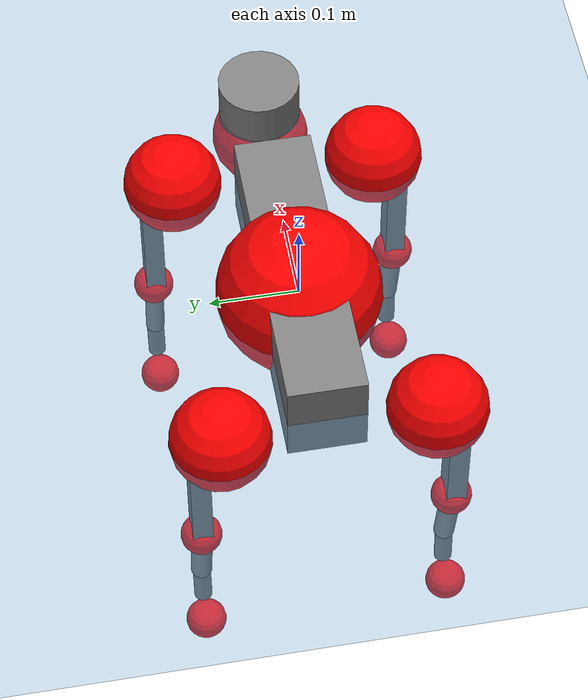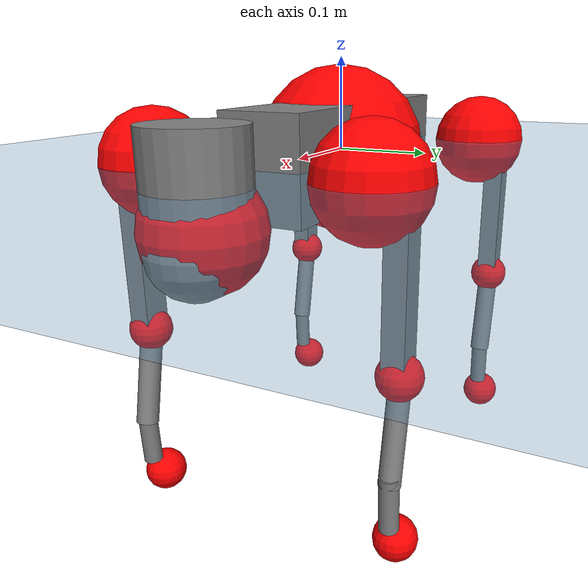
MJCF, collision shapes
<mujoco model="go2">
  <compiler angle="radian" assetdir="assets" balanceinertia="true" inertiafromgeom="false"/>

  <option timestep="0.005" density="1.2" viscosity="2e-05"/>

  <size nkey="1"/>

  <visual>
    <quality shadowsize="8192"/>
    <map shadowclip="0.5"/>
  </visual>

  <default>
    <default class="/">
      <geom contype="0" conaffinity="0" group="1" solref="-1000 -80"/>
      <site size="0.01 0.005 0.005" group="5"/>
      <general forcelimited="true" biastype="affine" gainprm="20" biasprm="0 -20 -0.5"/>
      <default class="go2">
        <joint armature="0.01" damping="0.01" frictionloss="0.2"/>
        <geom condim="1" margin="0.001"/>
        <default class="visual">
          <geom type="mesh" group="2"/>
        </default>
        <default class="collision">
          <geom group="3"/>
          <default class="foot">
            <geom size="0.022 0 0" condim="6" priority="1" friction="0.8 0.02 0.01" solimp="0.015 1 0.022"/>
          </default>
        </default>
        <default class="reward_collision_sphere">
          <geom group="5" rgba="1 0 0 1"/>
        </default>
      </default>
    </default>
  </default>

  <asset>
    <texture type="skybox" colorspace="auto" name="//unnamed_texture_0" builtin="gradient" rgb1="0.95 0.95 0.95" rgb2="0.95 0.95 0.95" width="100" height="600"/>
    <texture type="2d" colorspace="auto" name="texplane" builtin="checker" rgb1="0.345 0.575 0.748" rgb2="0.345 0.575 0.748" markrgb="1 1 1" width="512" height="512"/>
    <material name="MatPlane" class="/" texture="texplane" texuniform="true" texrepeat="2 2" specular="0.9"/>
    <material name="metal" class="/" rgba="0.9 0.95 0.95 1"/>
    <material name="black" class="/" rgba="0 0 0 1"/>
    <material name="white" class="/"/>
    <material name="gray" class="/" rgba="0.671705 0.692426 0.77427 1"/>
    <mesh name="base_0" class="/" file="base_0.obj"/>
    <mesh name="base_1" class="/" file="base_1.obj"/>
    <mesh name="base_2" class="/" file="base_2.obj"/>
    <mesh name="base_3" class="/" file="base_3.obj"/>
    <mesh name="base_4" class="/" file="base_4.obj"/>
    <mesh name="hip_0" class="/" file="hip_0.obj"/>
    <mesh name="hip_1" class="/" file="hip_1.obj"/>
    <mesh name="thigh_0" class="/" file="thigh_0.obj"/>
    <mesh name="thigh_1" class="/" file="thigh_1.obj"/>
    <mesh name="thigh_mirror_0" class="/" file="thigh_mirror_0.obj"/>
    <mesh name="thigh_mirror_1" class="/" file="thigh_mirror_1.obj"/>
    <mesh name="calf_0" class="/" file="calf_0.obj"/>
    <mesh name="calf_1" class="/" file="calf_1.obj"/>
    <mesh name="calf_mirror_0" class="/" file="calf_mirror_0.obj"/>
    <mesh name="calf_mirror_1" class="/" file="calf_mirror_1.obj"/>
    <mesh name="foot" class="/" file="foot.obj"/>
  </asset>

  <worldbody>
    <geom name="floor" class="/" size="100 100 0.125" type="plane" group="0" material="MatPlane"/>
    <light name="toplight_shadow" class="/" pos="0 0 5" dir="0.0990148 0.0990148 -0.990148" type="directional" ambient="0.04 0.04 0.04" diffuse="0.55 0.55 0.55" specular="0.12 0.12 0.12"/>
    <light name="toplight_fill" class="/" pos="0 0 5" dir="0.0990148 0.0990148 -0.990148" type="directional" castshadow="false" ambient="0.04 0.04 0.04" diffuse="0.3 0.3 0.3" specular="0.08 0.08 0.08"/>
    <body name="trunk" childclass="go2" pos="0.000857336 -0.000229995 -0.000174014" quat="1 -0.000201845 -3.82375e-05 -0.000248657">
      <inertial pos="0.0171548 -0.00295654 -0.00493921" quat="-0.00560092 0.713395 -0.000925379 0.700739" mass="5.75072" diaginertia="0.0762878 0.100742 0.0105553"/>
      <joint name="//unnamed_joint_0" type="free" armature="0" damping="0" frictionloss="0"/>
      <geom name="//unnamed_geom_1" class="visual" material="black" mesh="base_0"/>
      <geom name="//unnamed_geom_2" class="visual" material="black" mesh="base_1"/>
      <geom name="//unnamed_geom_3" class="visual" material="black" mesh="base_2"/>
      <geom name="//unnamed_geom_4" class="visual" material="white" mesh="base_3"/>
      <geom name="//unnamed_geom_5" class="visual" material="gray" mesh="base_4"/>
      <geom name="trunk_1" class="collision" size="0.174876 0.0434632 0.0529926" type="box"/>
      <geom name="trunk_2" class="collision" size="0.0464848 0.0418363" pos="0.266523 0 0.00847512" type="cylinder"/>
      <geom name="trunk_3" class="collision" size="0.0436957" pos="0.274005 0 -0.0508507"/>
      <geom name="//unnamed_geom_9" class="reward_collision_sphere" size="0.0929695"/>
      <geom name="//unnamed_geom_10" class="reward_collision_sphere" size="0.0557817" pos="0.261848 0 -0.038138"/>
      <site name="imu" pos="-0.0102416 0.000723291 0.0221748" size="0.00929695"/>
      <camera name="track" pos="0 -2.01281 0" quat="0.707107 0.707107 0 0" mode="trackcom"/>
      <camera name="ego_camera" pos="0.291773 0 0.038138" quat="-0.5 -0.5 0.5 0.5"/>
      <body name="FL_hip" pos="0.177548 0.0441249 -0.0017684" quat="1 0.000399805 -0.000190019 0.000170741">
        <inertial pos="-0.00508282 -0.000177853 -0.00042806" quat="0.497446 0.498529 0.506053 0.497923" mass="0.536174" diaginertia="0.000616022 0.00057719 0.000203575"/>
        <joint name="FL_hip_joint" pos="0 0 0" axis="0.999973 0.006716 0.00293376" range="-1.04605 1.05596" armature="0.00953703" damping="0.0125359" frictionloss="0.166537"/>
        <geom name="//unnamed_geom_11" class="visual" material="metal" mesh="hip_0"/>
        <geom name="//unnamed_geom_12" class="visual" material="gray" mesh="hip_1"/>
        <geom name="//unnamed_geom_13" class="collision" size="0.042766 0.0185939" pos="0 0.0805123 0" quat="0.707107 0.707107 0 0" type="cylinder"/>
        <geom name="//unnamed_geom_14" class="reward_collision_sphere" size="0.0557817" pos="0 0.0704483 0"/>
        <body name="FL_thigh" pos="-0.00240855 0.0981137 0.00240373" quat="0.999999 0.000111267 -0.000612791 -0.00118191">
          <inertial pos="-0.00350119 -0.0220864 -0.02626" quat="0.831264 0.0759979 -0.0109751 0.550549" mass="0.902483" diaginertia="0.00425849 0.00585838 0.000382878"/>
          <joint name="FL_thigh_joint" pos="0 0 0" axis="-0.001606 0.999998 0.00109585" stiffness="0.00838229" range="-1.51331 3.53297" armature="0.00972489" damping="0.0162039" frictionloss="0.171757"/>
          <geom name="//unnamed_geom_15" class="visual" material="metal" mesh="thigh_0"/>
          <geom name="//unnamed_geom_16" class="visual" material="gray" mesh="thigh_1"/>
          <geom name="//unnamed_geom_17" class="collision" size="0.0990125 0.0113888 0.0158048" pos="0 0 -0.09026" quat="0.707107 0 0.707107 0" type="box"/>
          <body name="FL_calf" pos="0.000110315 0.00182114 -0.179953" quat="1 9.52784e-06 -0.00045346 -0.000142979">
            <inertial pos="0.00585403 -0.00157374 -0.120527" quat="0.709089 0.00122048 -0.00505858 0.7051" mass="0.196102" diaginertia="0.00104351 0.00152307 2.32318e-05"/>
            <joint name="FL_calf_joint" pos="0 0 0" axis="-0.0140189 0.999887 -0.00540764" range="-2.68348 -0.831501" armature="0.00916545" damping="0.00221824" frictionloss="0.189196"/>
            <geom name="//unnamed_geom_18" class="visual" material="gray" mesh="calf_0"/>
            <geom name="//unnamed_geom_19" class="visual" material="black" mesh="calf_1"/>
            <geom name="FL_calf0" class="collision" size="0.0111563 0.0557817" pos="0.00748136 0 -0.0508507" quat="0.994493 0 -0.104807 0" type="cylinder"/>
            <geom name="//unnamed_geom_21" class="collision" size="0.0102266 0.0302151" pos="0.0187034 0 -0.125432" quat="0.999688 0 0.0249974 0" type="cylinder"/>
            <geom name="//unnamed_geom_22" class="visual" pos="0 0 -0.18052" quat="1 0 0 0" material="black" mesh="foot"/>
            <geom name="FL_foot" class="foot" size="0.0160763" pos="-0.00187034 0 -0.18052"/>
            <geom name="//unnamed_geom_24" class="reward_collision_sphere" size="0.0232424"/>
            <geom name="//unnamed_geom_25" class="reward_collision_sphere" size="0.0232424" pos="-0.00187034 0 -0.18052"/>
            <site name="FL_foot" class="foot" pos="-0.00187034 0 -0.18052" size="0.00929695"/>
          </body>
        </body>
      </body>
      <body name="FR_hip" pos="0.178562 -0.0467304 8.21778e-05" quat="1 -0.000279893 5.13122e-05 -7.72519e-05">
        <inertial pos="-0.00665794 -0.00408835 -0.00249556" quat="0.490579 0.500771 0.507637 0.500863" mass="0.538443" diaginertia="0.000603773 0.000628242 0.000200748"/>
        <joint name="FR_hip_joint" pos="0 0 0" axis="0.999891 0.0083106 -0.0122027" stiffness="2.15471e-05" range="-1.0719 1.0516" armature="0.00937337" damping="0" frictionloss="0.186072"/>
        <geom name="//unnamed_geom_26" class="visual" pos="0 1.3842e-09 5.93713e-08" quat="4.63268e-05 1 0 0" material="metal" mesh="hip_0"/>
        <geom name="//unnamed_geom_27" class="visual" pos="0 2.24396e-09 -1.46848e-07" quat="4.63268e-05 1 0 0" material="gray" mesh="hip_1"/>
        <geom name="//unnamed_geom_28" class="collision" size="0.042766 0.0185939" pos="0 -0.0805123 0" quat="0.707107 0.707107 0 0" type="cylinder"/>
        <geom name="//unnamed_geom_29" class="reward_collision_sphere" size="0.0557817" pos="0 -0.0704483 0"/>
        <body name="FR_thigh" pos="0.00176356 -0.0980436 -0.00225449" quat="0.999999 0.00118864 -0.000180016 0.000496801">
          <inertial pos="-0.000858595 0.0230003 -0.0292171" quat="0.546818 -0.0243724 0.0808552 0.832982" mass="0.968452" diaginertia="0.00420997 0.00590609 0.000402701"/>
          <joint name="FR_thigh_joint" pos="0 0 0" axis="0.00433735 -0.99999 0.0013348" stiffness="0.000369871" range="-3.49572 1.59208" armature="0.008454" damping="0.0125687" frictionloss="0.190121"/>
          <geom name="//unnamed_geom_30" class="visual" material="metal" mesh="thigh_mirror_0"/>
          <geom name="//unnamed_geom_31" class="visual" material="gray" mesh="thigh_mirror_1"/>
          <geom name="//unnamed_geom_32" class="collision" size="0.0990125 0.0113888 0.0158048" pos="0 0 -0.09026" quat="0.707107 0 0.707107 0" type="box"/>
          <body name="FR_calf" pos="-0.00148708 -0.000211566 -0.180293" quat="1 0.000494443 -0.000283493 -0.00061568">
            <inertial pos="0.00331688 0.000750227 -0.119833" quat="0.70271 0.00630141 0.00878634 0.711394" mass="0.204263" diaginertia="0.00110502 0.00154566 2.38992e-05"/>
            <joint name="FR_calf_joint" pos="0 0 0" axis="-0.0059898 -0.999969 0.00501504" range="0.782999 2.68851" armature="0.010645" damping="0.0208101" frictionloss="0.192253"/>
            <geom name="//unnamed_geom_33" class="visual" material="gray" mesh="calf_mirror_0"/>
            <geom name="//unnamed_geom_34" class="visual" material="black" mesh="calf_mirror_1"/>
            <geom name="FR_calf0" class="collision" size="0.012086 0.0557817" pos="0.0093517 0 -0.0508507" quat="0.995004 0 -0.0998334 0" type="cylinder"/>
            <geom name="//unnamed_geom_36" class="collision" size="0.0102266 0.0302151" pos="0.0187034 0 -0.125432" quat="0.999688 0 0.0249974 0" type="cylinder"/>
            <geom name="//unnamed_geom_37" class="visual" pos="0 0 -0.18052" quat="1 0 0 0" material="black" mesh="foot"/>
            <geom name="FR_foot" class="foot" size="0.0204812" pos="-0.00187034 0 -0.18052"/>
            <geom name="//unnamed_geom_39" class="reward_collision_sphere" size="0.0232424"/>
            <geom name="//unnamed_geom_40" class="reward_collision_sphere" size="0.0232424" pos="-0.00187034 0 -0.18052"/>
            <site name="FR_foot" class="foot" pos="-0.00187034 0 -0.18052" size="0.00929695"/>
          </body>
        </body>
      </body>
      <body name="RL_hip" pos="-0.178004 0.045333 -0.00309746" quat="1 -1.39936e-05 -1.36217e-05 -1.36471e-06">
        <inertial pos="0.00477085 0.00446895 -0.00164459" quat="0.502911 0.492124 0.508021 0.496799" mass="0.564279" diaginertia="0.000672433 0.00064426 0.000213352"/>
        <joint name="RL_hip_joint" pos="0 0 0" axis="-0.999963 0.00567758 0.00645238" range="-1.05487 1.03933" armature="0.00966061" damping="0" frictionloss="0.187367"/>
        <geom name="//unnamed_geom_41" class="visual" pos="-7.63643e-10 0 -1.49691e-07" quat="4.63268e-05 0 1 0" material="metal" mesh="hip_0"/>
        <geom name="//unnamed_geom_42" class="visual" pos="-1.23796e-09 0 -1.32755e-07" quat="4.63268e-05 0 1 0" material="gray" mesh="hip_1"/>
        <geom name="//unnamed_geom_43" class="collision" size="0.042766 0.0185939" pos="0 0.0805123 0" quat="0.707107 0.707107 0 0" type="cylinder"/>
        <geom name="//unnamed_geom_44" class="reward_collision_sphere" size="0.0557817" pos="0 0.0704483 0"/>
        <body name="RL_thigh" pos="0.000378719 0.0960401 0.00081386" quat="1 -3.17881e-05 3.03676e-05 -2.95893e-06">
          <inertial pos="-0.00580046 -0.0223705 -0.030449" quat="0.829189 0.0852791 -0.0199017 0.552067" mass="0.895819" diaginertia="0.00400416 0.00602495 0.000373408"/>
          <joint name="RL_thigh_joint" pos="0 0 0" axis="-0.00945147 0.999955 0.000330572" stiffness="0.0145245" range="-0.543454 4.49583" armature="0.00881255" damping="0" frictionloss="0.184789"/>
          <geom name="//unnamed_geom_45" class="visual" material="metal" mesh="thigh_0"/>
          <geom name="//unnamed_geom_46" class="visual" material="gray" mesh="thigh_1"/>
          <geom name="//unnamed_geom_47" class="collision" size="0.0990125 0.0113888 0.0158048" pos="0 0 -0.09026" quat="0.707107 0 0.707107 0" type="box"/>
          <body name="RL_calf" pos="-0.000471347 0.000307066 -0.180422" quat="1 -8.12994e-05 0.000224829 0.000185657">
            <inertial pos="0.00691963 0.00223654 -0.119492" quat="0.706993 0.00746843 -0.00967931 0.707114" mass="0.199133" diaginertia="0.00106771 0.00160875 2.37627e-05"/>
            <joint name="RL_calf_joint" pos="0 0 0" axis="-0.00691877 0.999963 0.00509986" stiffness="0.00464193" range="-2.66742 -0.881932" armature="0.0105879" damping="0.017544" frictionloss="0.161118"/>
            <geom name="//unnamed_geom_48" class="visual" material="gray" mesh="calf_0"/>
            <geom name="//unnamed_geom_49" class="visual" material="black" mesh="calf_1"/>
            <geom name="RL_calf0" class="collision" size="0.012086 0.0557817" pos="0.0093517 0 -0.0508507" quat="0.995004 0 -0.0998334 0" type="cylinder"/>
            <geom name="//unnamed_geom_51" class="collision" size="0.0102266 0.0302151" pos="0.0187034 0 -0.125432" quat="0.999688 0 0.0249974 0" type="cylinder"/>
            <geom name="//unnamed_geom_52" class="visual" pos="0 0 -0.18052" quat="1 0 0 0" material="black" mesh="foot"/>
            <geom name="RL_foot" class="foot" size="0.0182939" pos="-0.00187034 0 -0.18052"/>
            <geom name="//unnamed_geom_54" class="reward_collision_sphere" size="0.0232424"/>
            <geom name="//unnamed_geom_55" class="reward_collision_sphere" size="0.0232424" pos="-0.00187034 0 -0.18052"/>
            <site name="RL_foot" class="foot" pos="-0.00187034 0 -0.18052" size="0.00929695"/>
          </body>
        </body>
      </body>
      <body name="RR_hip" pos="-0.178493 -0.0481861 0.000446297" quat="1 0.000152493 -6.47723e-05 -0.00052925">
        <inertial pos="0.00330704 -0.00053939 -0.00286947" quat="0.492644 0.49821 0.506897 0.50214" mass="0.545694" diaginertia="0.000611867 0.000598749 0.000203072"/>
        <joint name="RR_hip_joint" pos="0 0 0" axis="-0.999901 -0.0135039 0.00386965" stiffness="0.00125977" range="-1.10158 1.06897" armature="0.00914031" damping="0.000612423" frictionloss="0.185332"/>
        <geom name="//unnamed_geom_56" class="visual" pos="7.66108e-10 1.3842e-09 -2.09063e-07" quat="2.14617e-09 4.63268e-05 4.63268e-05 -1" material="metal" mesh="hip_0"/>
        <geom name="//unnamed_geom_57" class="visual" pos="1.23186e-09 2.24396e-09 1.40929e-08" quat="2.14617e-09 4.63268e-05 4.63268e-05 -1" material="gray" mesh="hip_1"/>
        <geom name="//unnamed_geom_58" class="collision" size="0.042766 0.0185939" pos="0 -0.0805123 0" quat="0.707107 0.707107 0 0" type="cylinder"/>
        <geom name="//unnamed_geom_59" class="reward_collision_sphere" size="0.0557817" pos="0 -0.0704483 0"/>
        <body name="RR_thigh" pos="0.00264727 -0.0956423 -0.00171685" quat="0.999999 -0.000990016 -0.000734449 0.000195988">
          <inertial pos="-0.00288643 0.0241115 -0.0287113" quat="0.552211 -0.0200356 0.084225 0.829197" mass="0.875907" diaginertia="0.00402517 0.00590381 0.000378961"/>
          <joint name="RR_thigh_joint" pos="0 0 0" axis="-0.000746604 -1 0.000664979" stiffness="0.00349991" range="-4.50481 0.536217" armature="0.00979433" damping="0.0169289" frictionloss="0.188461"/>
          <geom name="//unnamed_geom_60" class="visual" material="metal" mesh="thigh_mirror_0"/>
          <geom name="//unnamed_geom_61" class="visual" material="gray" mesh="thigh_mirror_1"/>
          <geom name="//unnamed_geom_62" class="collision" size="0.0990125 0.0113888 0.0158048" pos="0 0 -0.09026" quat="0.707107 0 0.707107 0" type="box"/>
          <body name="RR_calf" pos="0.000151862 0.00221416 -0.179992" quat="0.999999 -0.000863473 0.000689781 0.000695476">
            <inertial pos="0.00831821 -9.31689e-06 -0.120808" quat="0.707127 0.00142246 0.0114379 0.706993" mass="0.19734" diaginertia="0.00104575 0.00151262 2.28971e-05"/>
            <joint name="RR_calf_joint" pos="0 0 0" axis="-0.00282893 -0.999995 0.00116688" range="0.827107 2.78064" armature="0.00935661" damping="0.0205002" frictionloss="0.191423"/>
            <geom name="//unnamed_geom_63" class="visual" material="gray" mesh="calf_mirror_0"/>
            <geom name="//unnamed_geom_64" class="visual" material="black" mesh="calf_mirror_1"/>
            <geom name="RR_calf0" class="collision" size="0.012086 0.0557817" pos="0.0093517 0 -0.0508507" quat="0.995004 0 -0.0998334 0" type="cylinder"/>
            <geom name="//unnamed_geom_66" class="collision" size="0.0102266 0.0302151" pos="0.0187034 0 -0.125432" quat="0.999688 0 0.0249974 0" type="cylinder"/>
            <geom name="//unnamed_geom_67" class="visual" pos="0 0 -0.18052" quat="1 0 0 0" material="black" mesh="foot"/>
            <geom name="RR_foot" class="foot" size="0.0195865" pos="-0.00187034 0 -0.18052"/>
            <geom name="//unnamed_geom_69" class="reward_collision_sphere" size="0.0232424"/>
            <geom name="//unnamed_geom_70" class="reward_collision_sphere" size="0.0232424" pos="-0.00187034 0 -0.18052"/>
            <site name="RR_foot" class="foot" pos="-0.00187034 0 -0.18052" size="0.00929695"/>
          </body>
        </body>
      </body>
    </body>
  </worldbody>

  <contact>
    <pair class="/" geom1="floor" geom2="FL_foot" name="//unnamed_contact_0"/>
    <pair class="/" geom1="floor" geom2="FR_foot" name="//unnamed_contact_1"/>
    <pair class="/" geom1="floor" geom2="RL_foot" name="//unnamed_contact_2"/>
    <pair class="/" geom1="floor" geom2="RR_foot" name="//unnamed_contact_3"/>
  </contact>

  <actuator>
    <general name="FL_hip" class="/" joint="FL_hip_joint" forcerange="-19.8461 19.8461" gainprm="18.0145" biasprm="0 -18.0145 -0.447804"/>
    <general name="FL_thigh" class="/" joint="FL_thigh_joint" forcerange="-19.8376 19.8376" gainprm="18.0145" biasprm="0 -18.0145 -0.447804"/>
    <general name="FL_calf" class="/" joint="FL_calf_joint" forcerange="-42.3076 42.3076" gainprm="18.0145" biasprm="0 -18.0145 -0.447804"/>
    <general name="FR_hip" class="/" joint="FR_hip_joint" forcerange="-22.4341 22.4341" gainprm="18.0145" biasprm="0 -18.0145 -0.447804"/>
    <general name="FR_thigh" class="/" joint="FR_thigh_joint" forcerange="-23.8823 23.8823" gainprm="18.0145" biasprm="0 -18.0145 -0.447804"/>
    <general name="FR_calf" class="/" joint="FR_calf_joint" forcerange="-43.7595 43.7595" gainprm="18.0145" biasprm="0 -18.0145 -0.447804"/>
    <general name="RL_hip" class="/" joint="RL_hip_joint" forcerange="-22.1723 22.1723" gainprm="18.0145" biasprm="0 -18.0145 -0.447804"/>
    <general name="RL_thigh" class="/" joint="RL_thigh_joint" forcerange="-20.112 20.112" gainprm="18.0145" biasprm="0 -18.0145 -0.447804"/>
    <general name="RL_calf" class="/" joint="RL_calf_joint" forcerange="-42.3173 42.3173" gainprm="18.0145" biasprm="0 -18.0145 -0.447804"/>
    <general name="RR_hip" class="/" joint="RR_hip_joint" forcerange="-22.7695 22.7695" gainprm="18.0145" biasprm="0 -18.0145 -0.447804"/>
    <general name="RR_thigh" class="/" joint="RR_thigh_joint" forcerange="-24.2939 24.2939" gainprm="18.0145" biasprm="0 -18.0145 -0.447804"/>
    <general name="RR_calf" class="/" joint="RR_calf_joint" forcerange="-40.8948 40.8948" gainprm="18.0145" biasprm="0 -18.0145 -0.447804"/>
  </actuator>

  <sensor>
    <gyro site="imu" name="imu_angular_velocity"/>
    <velocimeter site="imu" name="imu_linear_velocity"/>
    <framelinvel objtype="site" objname="FL_foot" name="FL_foot_global_linear_velocity"/>
    <framelinvel objtype="site" objname="FR_foot" name="FR_foot_global_linear_velocity"/>
    <framelinvel objtype="site" objname="RL_foot" name="RL_foot_global_linear_velocity"/>
    <framelinvel objtype="site" objname="RR_foot" name="RR_foot_global_linear_velocity"/>
  </sensor>

  <keyframe>
    <key name="home" qpos="0 0 0.325 1 0 0 0 0.1 0.8 -1.5 -0.1 -0.8 1.5 -0.1 0.8 -1.5 0.1 -0.8 1.5"/>
  </keyframe>
</mujoco>
